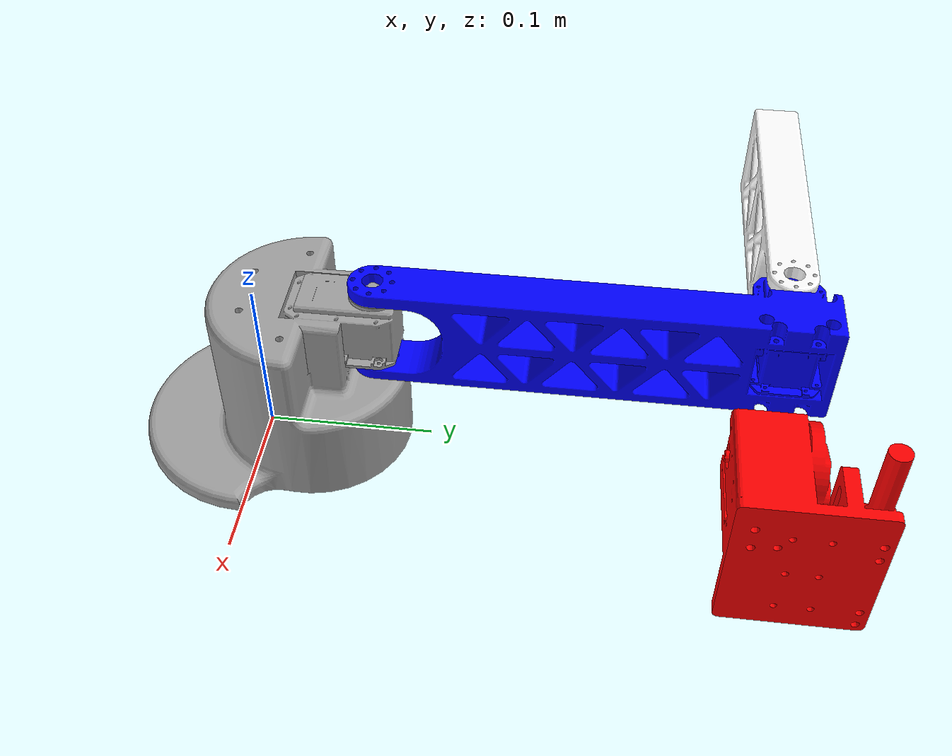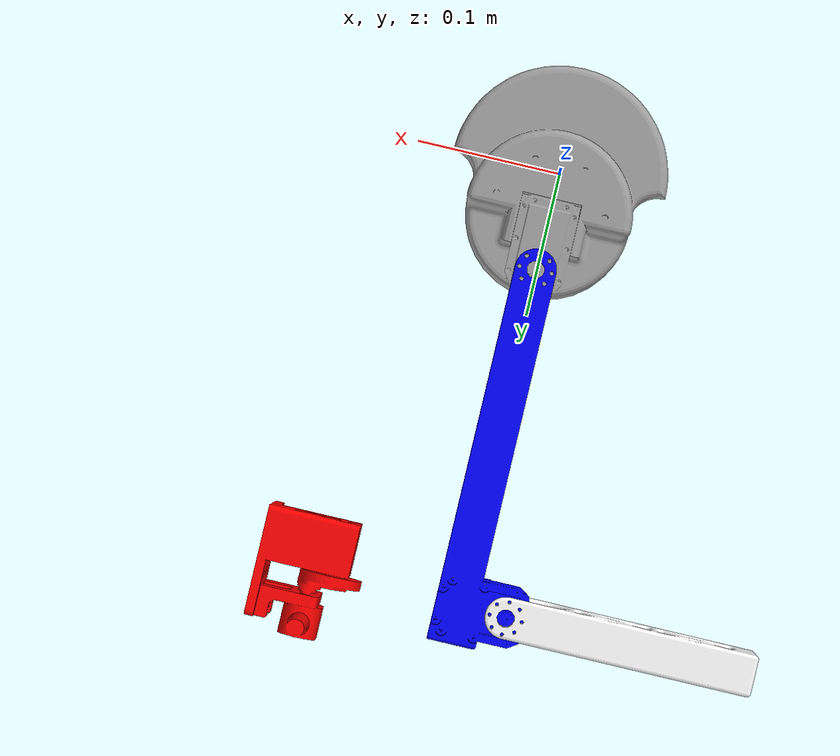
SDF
<sdf version='1.7'>
  <model name='three_link_robot'>
    <link name='base_link'>

      <collision name='base_link_collision'>
        <pose>0 0 0 0 0 0</pose>
        <geometry>
          <mesh>
            <scale>1 1 1</scale>
            <uri>meshes/base_link.STL</uri>
          </mesh>
        </geometry>
      </collision>
      <visual name='base_link_visual'>
        <pose>0 0 0 0 0 0</pose>
        <geometry>
          <mesh>
            <scale>1 1 1</scale>
            <uri>meshes/base_link.STL</uri>
          </mesh>
        </geometry>
        <material>
          <diffuse>0.625 0.625 0.625 1</diffuse>
          <ambient>0.625 0.625 0.625 1</ambient>
        </material>
      </visual>
    </link>
    <joint name='joint1' type='revolute'>
      <pose>0.0011 0.07051 0.11867 0 0 0</pose>
      <parent>base_link</parent>
      <child>link1</child>
      <axis>
        <xyz>0 0 1</xyz>
        <limit>
          <lower>-1.5</lower>
          <upper>1.5</upper>
          <effort>10</effort>
          <velocity>1</velocity>
        </limit>
        <dynamics>
          <spring_reference>0</spring_reference>
          <spring_stiffness>0</spring_stiffness>
        </dynamics>
      </axis>
    </joint>
    <link name='link1'>
      <pose>0.0011 0.07051 0.11867 0 0 0</pose>
      <inertial>
        <pose>0 0 0 0 0 0</pose>
        <mass>1</mass>
        <inertia>
          <ixx>0.01</ixx>
          <ixy>0</ixy>
          <ixz>0</ixz>
          <iyy>0.01</iyy>
          <iyz>0</iyz>
          <izz>0.01</izz>
        </inertia>
      </inertial>
      <collision name='link1_collision'>
        <pose>0 0 0 0 0 0</pose>
        <geometry>
          <mesh>
            <scale>1 1 1</scale>
            <uri>meshes/link1.STL</uri>
          </mesh>
        </geometry>
      </collision>
      <visual name='link1_visual'>
        <pose>0 0 0 0 0 0</pose>
        <geometry>
          <mesh>
            <scale>1 1 1</scale>
            <uri>meshes/link1.STL</uri>
          </mesh>
        </geometry>
        <material>
          <diffuse>0 0 1 1</diffuse>
          <ambient>0 0 1 1</ambient>
        </material>
      </visual>
    </link>
    <joint name='joint2' type='revolute'>
      <pose>-0.0341 0.23 0 0 0 1.5708</pose>
      <parent>link1</parent>
      <child>link2</child>
      <axis>
        <xyz>0 0 1</xyz>
        <limit>
          <lower>-1.5</lower>
          <upper>1.5</upper>
          <effort>10</effort>
          <velocity>1</velocity>
        </limit>
        <dynamics>
          <spring_reference>0</spring_reference>
          <spring_stiffness>0</spring_stiffness>
        </dynamics>
      </axis>
    </joint>
    <link name='link2'>
      <pose>-0.03299 0.30051 0.11867 0 0 1.5708</pose>
      <inertial>
        <pose>0 0 0 0 0 0</pose>
        <mass>1</mass>
        <inertia>
          <ixx>0.01</ixx>
          <ixy>0</ixy>
          <ixz>0</ixz>
          <iyy>0.01</iyy>
          <iyz>0</iyz>
          <izz>0.01</izz>
        </inertia>
      </inertial>
      <collision name='link2_collision'>
        <pose>0 0 0 0 0 0</pose>
        <geometry>
          <mesh>
            <scale>1 1 1</scale>
            <uri>meshes/link2.STL</uri>
          </mesh>
        </geometry>
      </collision>
      <visual name='link2_visual'>
        <pose>0 0 0 0 0 0</pose>
        <geometry>
          <mesh>
            <scale>1 1 1</scale>
            <uri>meshes/link2.STL</uri>
          </mesh>
        </geometry>
        <material>
          <diffuse>1 1 1 1</diffuse>
          <ambient>1 1 1 1</ambient>
        </material>
      </visual>
    </link>
    <joint name='joint3' type='prismatic'>
      <pose>0 0.17 -0.03106 0 0 0</pose>
      <parent>link2</parent>
      <child>end_effector_link</child>
      <axis>
        <xyz>0 0 1</xyz>
        <limit>
          <lower>0</lower>
          <upper>0.3</upper>
          <effort>10</effort>
          <velocity>1</velocity>
        </limit>
        <dynamics>
          <spring_reference>0</spring_reference>
          <spring_stiffness>0</spring_stiffness>
        </dynamics>
      </axis>
    </joint>
    <link name='end_effector_link'>
      <pose>0.13701 0.30051 0.08761 0 0 1.5708</pose>
      <inertial>
        <pose>0 0 0 0 0 0</pose>
        <mass>0.1</mass>
        <inertia>
          <ixx>0.001</ixx>
          <ixy>0</ixy>
          <ixz>0</ixz>
          <iyy>0.001</iyy>
          <iyz>0</iyz>
          <izz>0.001</izz>
        </inertia>
      </inertial>
      <collision name='end_effector_link_collision'>
        <pose>0 0 0 0 0 0</pose>
        <geometry>
          <mesh>
            <scale>1 1 1</scale>
            <uri>meshes/z_link.STL</uri>
          </mesh>
        </geometry>
      </collision>
      <visual name='end_effector_link_visual'>
        <pose>0 0 0 0 0 0</pose>
        <geometry>
          <mesh>
            <scale>1 1 1</scale>
            <uri>meshes/z_link.STL</uri>
          </mesh>
        </geometry>
        <material>
          <diffuse>1 0 0 1</diffuse>
          <ambient>1 0 0 1</ambient>
        </material>
      </visual>
    </link>
    <plugin name='gazebo_ros_control' filename='libgazebo_ros_control.so'>
      <robotNamespace>/</robotNamespace>
    </plugin>
  </model>
</sdf>
